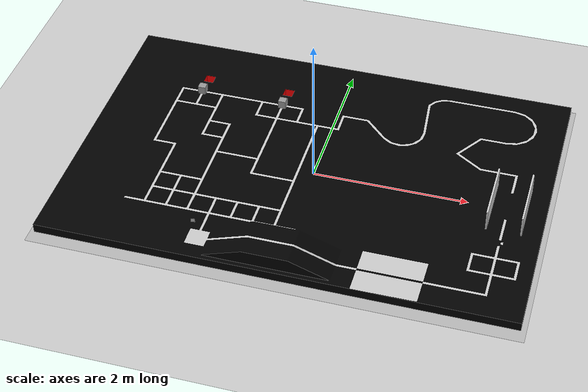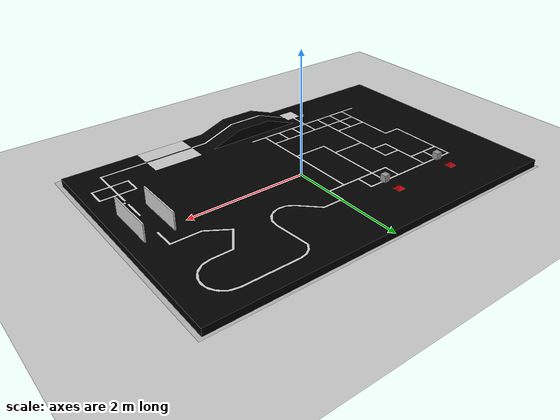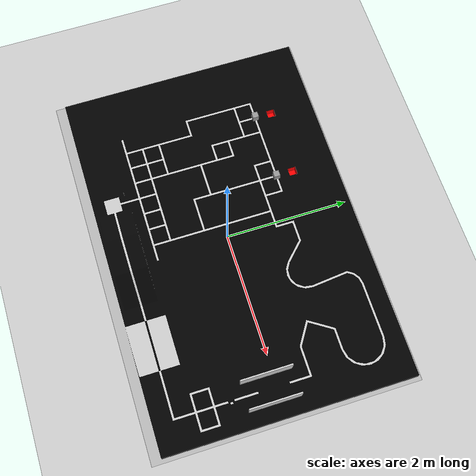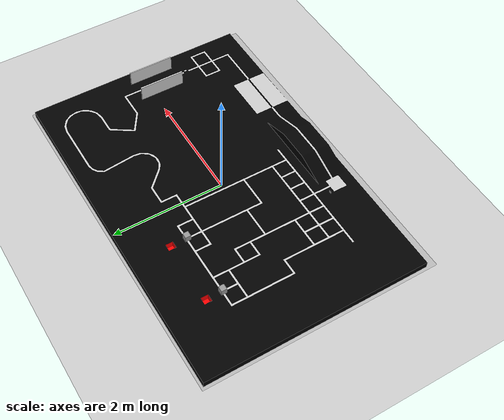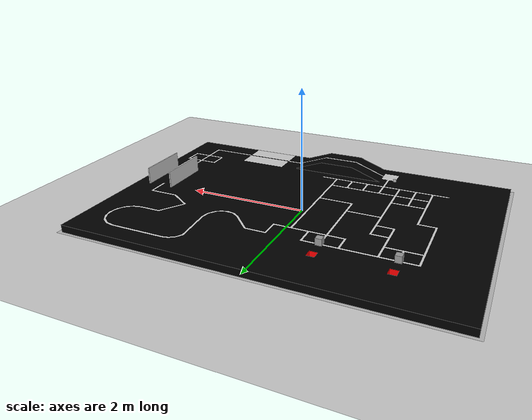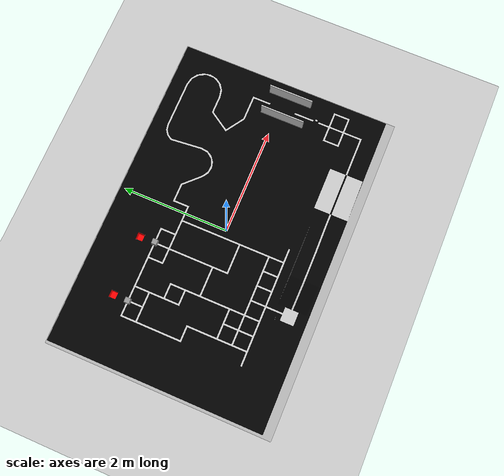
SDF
<sdf version="1.6">
 <world name="default">
  <light name="sun" type="directional">
   <pose>0 0 10 0 -0 0</pose>
   <diffuse>0.8 0.8 0.8 1</diffuse>
   <specular>0.2 0.2 0.2 1</specular>
   <attenuation>
    <range>1000</range>
    <constant>0.9</constant>
    <linear>0.01</linear>
    <quadratic>0.001</quadratic>
   </attenuation>
   <direction>-0.5 0.1 -0.9</direction>
  </light>
  <model name="ground_plane">
   <static>1</static>
   <link name="link">
    <collision name="collision">
     <geometry><plane><normal>0 0 1</normal><size>100 100</size></plane></geometry>
     <surface>
      <contact><collide_bitmask>65535</collide_bitmask></contact>
      <friction><ode><mu>100</mu><mu2>50</mu2></ode></friction>
     </surface>
    </collision>
    <visual name="visual">
     <cast_shadows>0</cast_shadows>
     <geometry><plane><normal>0 0 1</normal><size>100 100</size></plane></geometry>
     <material>
      <script><uri>file://media/materials/scripts/gazebo.material</uri><name>Gazebo/Grey</name></script>
     </material>
    </visual>
   </link>
  </model>
  <gravity>0 0 -9.8</gravity>
  <magnetic_field>6e-06 2.3e-05 -4.2e-05</magnetic_field>
  <atmosphere type="adiabatic"/>
  <physics name="default_physics" default="0" type="ode">
   <max_step_size>0.001</max_step_size>
   <real_time_factor>1</real_time_factor>
   <real_time_update_rate>1000</real_time_update_rate>
  </physics>
  <scene><ambient>0.4 0.4 0.4 1</ambient><background>0.7 0.7 0.7 1</background><shadows>1</shadows></scene>
  <spherical_coordinates>
   <surface_model>EARTH_WGS84</surface_model>
   <latitude_deg>0</latitude_deg>
   <longitude_deg>0</longitude_deg>
   <elevation>0</elevation>
   <heading_deg>0</heading_deg>
  </spherical_coordinates>
  <model name="sample_arena_urdf">
   <link name="base">
    <inertial>
     <mass>2994.3</mass>
     <inertia>
      <ixx>8712.4</ixx>
      <ixy>24.678</ixy>
      <ixz>-16.049</ixz>
      <iyy>12837</iyy>
      <iyz>-3.4926</iyz>
      <izz>4137.3</izz>
     </inertia>
    </inertial>
    <collision name="base_collision">
     <geometry>
      <mesh>
       <scale>1 1 1</scale>
       <uri>/home/neha_kurian/catkin_ws/src/sample_arena_urdf/meshes/arena_samplenew.dae</uri>
      </mesh>
     </geometry>
    </collision>
    <visual name="base_visual">
     <geometry>
      <mesh>
       <scale>1 1 1</scale>
       <uri>/home/neha_kurian/catkin_ws/src/sample_arena_urdf/meshes/arena_samplenew.dae</uri>
      </mesh>
     </geometry>
    </visual>
   </link>
   <pose>0 0 -6.6e-05 0 2e-06 0</pose>
  </model>
  <model name="unit_box">
   <pose>-1.84856 1.06579 0.174176 -5.4e-05 2e-06 0.000792</pose>
   <link name="link">
    <inertial>
     <mass>1</mass>
     <inertia>
      <ixx>0.166667</ixx>
      <ixy>0</ixy>
      <ixz>0</ixz>
      <iyy>0.166667</iyy>
      <iyz>0</iyz>
      <izz>0.166667</izz>
     </inertia>
    </inertial>
    <collision name="collision">
     <geometry><box><size>0.098926 0.097933 0.108286</size></box></geometry>
    </collision>
    <visual name="visual">
     <geometry><box><size>0.098926 0.097933 0.108286</size></box></geometry>
     <material>
      <script><name>Gazebo/Grey</name><uri>file://media/materials/scripts/gazebo.material</uri></script>
     </material>
    </visual>
   </link>
  </model>
  <model name="unit_box_clone">
   <pose>-0.722857 1.06095 0.174241 3e-06 1e-06 -0.000186</pose>
   <link name="link">
    <inertial>
     <mass>1</mass>
     <inertia>
      <ixx>0.166667</ixx>
      <ixy>0</ixy>
      <ixz>0</ixz>
      <iyy>0.166667</iyy>
      <iyz>0</iyz>
      <izz>0.166667</izz>
     </inertia>
    </inertial>
    <collision name="collision">
     <geometry><box><size>0.098926 0.097933 0.108286</size></box></geometry>
    </collision>
    <visual name="visual">
     <geometry><box><size>0.098926 0.097933 0.108286</size></box></geometry>
     <material>
      <script><name>Gazebo/Grey</name><uri>file://media/materials/scripts/gazebo.material</uri></script>
     </material>
    </visual>
   </link>
  </model>
  <audio><device>default</device></audio>
  <model name="sampleQR">
   <static>1</static>
   <link name="link">
    <visual name="visual">
     <geometry><mesh><uri>model://sampleQR/meshes/Marker0.dae</uri></mesh></geometry>
    </visual>
   </link>
   <pose>-1.1348 -1.39442 0.147792 0 -0 1.69179</pose>
  </model>
 </world>
</sdf>
